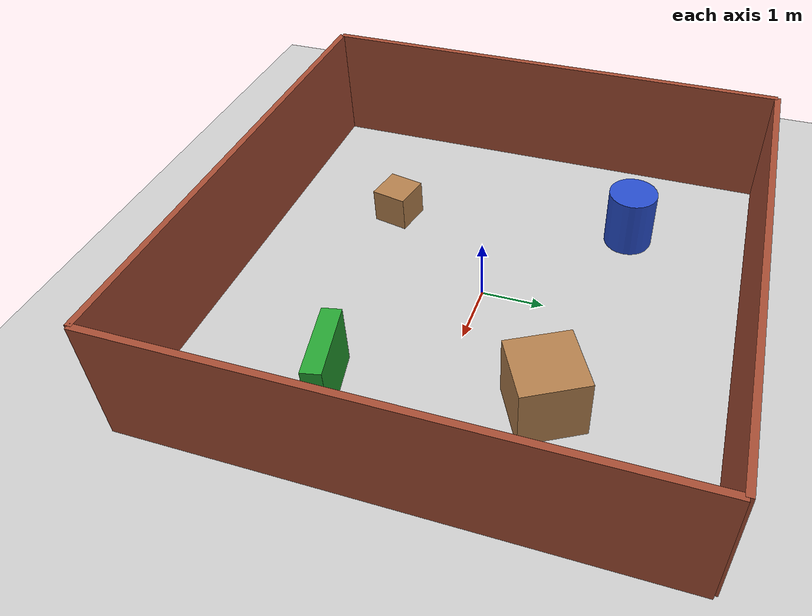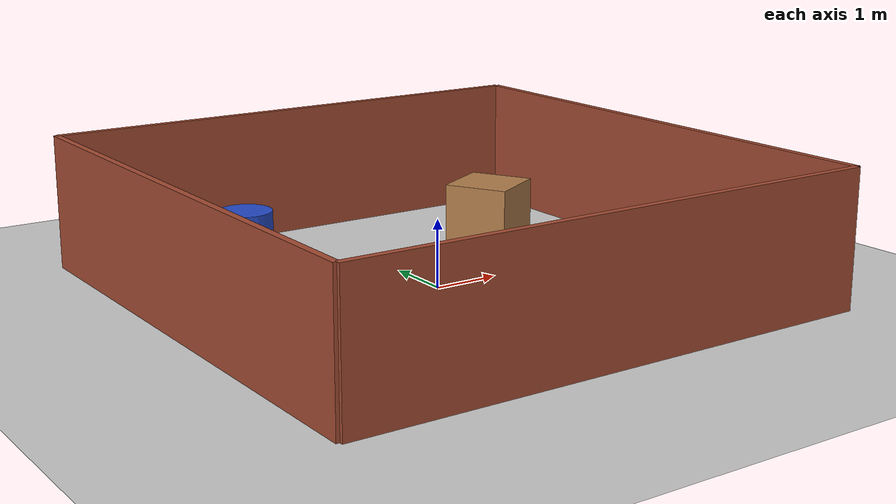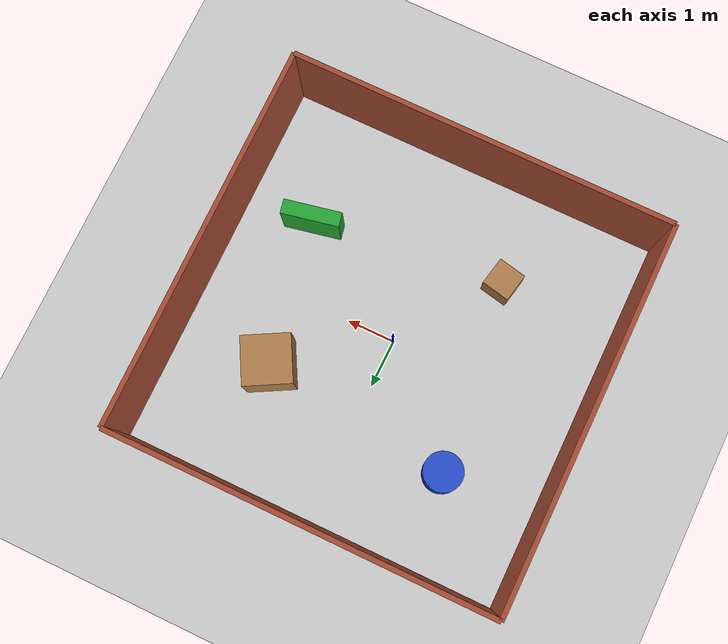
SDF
<?xml version="1.0" ?>
<sdf version="1.6">
  <world name="test_room_world">
    <!-- Physics tuning for VM: reduce CPU load while keeping stable /clock -->
    <physics type="ode">
      <real_time_update_rate>500</real_time_update_rate>
      <max_step_size>0.002</max_step_size>
    </physics>

    <!-- Global light source -->
    <include>
      <uri>model://sun</uri>
    </include>

    <!-- Ground plane -->
    <include>
      <uri>model://ground_plane</uri>
    </include>

    <!-- Enclosed room walls -->
    <model name="room_walls">
      <static>true</static>
      <!-- North wall -->
      <link name="wall_n">
        <pose>0 4 1 0 0 0</pose>
        <collision name="collision_n"><geometry><box><size>8 0.1 2</size></box></geometry></collision>
        <visual name="visual_n"><geometry><box><size>8 0.1 2</size></box></geometry>
          <material><script><uri>file://media/materials/scripts/gazebo.material</uri><name>Gazebo/Bricks</name></script></material>
        </visual>
      </link>
      <!-- South wall -->
      <link name="wall_s">
        <pose>0 -4 1 0 0 0</pose>
        <collision name="collision_s"><geometry><box><size>8 0.1 2</size></box></geometry></collision>
        <visual name="visual_s"><geometry><box><size>8 0.1 2</size></box></geometry>
          <material><script><uri>file://media/materials/scripts/gazebo.material</uri><name>Gazebo/Bricks</name></script></material>
        </visual>
      </link>
      <!-- East wall -->
      <link name="wall_e">
        <pose>4 0 1 0 0 0</pose>
        <collision name="collision_e"><geometry><box><size>0.1 8 2</size></box></geometry></collision>
        <visual name="visual_e"><geometry><box><size>0.1 8 2</size></box></geometry>
          <material><script><uri>file://media/materials/scripts/gazebo.material</uri><name>Gazebo/Bricks</name></script></material>
        </visual>
      </link>
      <!-- West wall -->
      <link name="wall_w">
        <pose>-4 0 1 0 0 0</pose>
        <collision name="collision_w"><geometry><box><size>0.1 8 2</size></box></geometry></collision>
        <visual name="visual_w"><geometry><box><size>0.1 8 2</size></box></geometry>
          <material><script><uri>file://media/materials/scripts/gazebo.material</uri><name>Gazebo/Bricks</name></script></material>
        </visual>
      </link>
    </model>

    <!-- Obstacles inside the room -->
    <model name="obstacle_box_1">
      <static>false</static>
      <pose>2.0 1.5 0.5 0 0 0.5</pose>
      <link name="link">
        <collision name="collision"><geometry><box><size>1 1 1</size></box></geometry></collision>
        <visual name="visual"><geometry><box><size>1 1 1</size></box></geometry>
          <material><script><uri>file://media/materials/scripts/gazebo.material</uri><name>Gazebo/WoodPallet</name></script></material>
        </visual>
      </link>
    </model>

    <model name="obstacle_cylinder_1">
      <static>true</static>
      <pose>-2.0 2.0 0.5 0 0 0</pose>
      <link name="link">
        <collision name="collision"><geometry><cylinder><radius>0.4</radius><length>1.0</length></cylinder></geometry></collision>
        <visual name="visual"><geometry><cylinder><radius>0.4</radius><length>1.0</length></cylinder></geometry>
          <material><script><uri>file://media/materials/scripts/gazebo.material</uri><name>Gazebo/Blue</name></script></material>
        </visual>
      </link>
    </model>

    <model name="obstacle_box_2">
      <static>false</static>
      <pose>-1.5 -2.0 0.3 0 0 -0.2</pose>
      <link name="link">
        <collision name="collision"><geometry><box><size>0.6 0.6 0.6</size></box></geometry></collision>
        <visual name="visual"><geometry><box><size>0.6 0.6 0.6</size></box></geometry>
          <material><script><uri>file://media/materials/scripts/gazebo.material</uri><name>Gazebo/WoodPallet</name></script></material>
        </visual>
      </link>
    </model>

    <model name="obstacle_box_3">
      <static>true</static>
      <pose>2.5 -1.5 0.5 0 0 0.2</pose>
      <link name="link">
        <collision name="collision"><geometry><box><size>1.2 0.3 1.0</size></box></geometry></collision>
        <visual name="visual"><geometry><box><size>1.2 0.3 1.0</size></box></geometry>
          <material><script><uri>file://media/materials/scripts/gazebo.material</uri><name>Gazebo/Green</name></script></material>
        </visual>
      </link>
    </model>

  </world>
</sdf>
